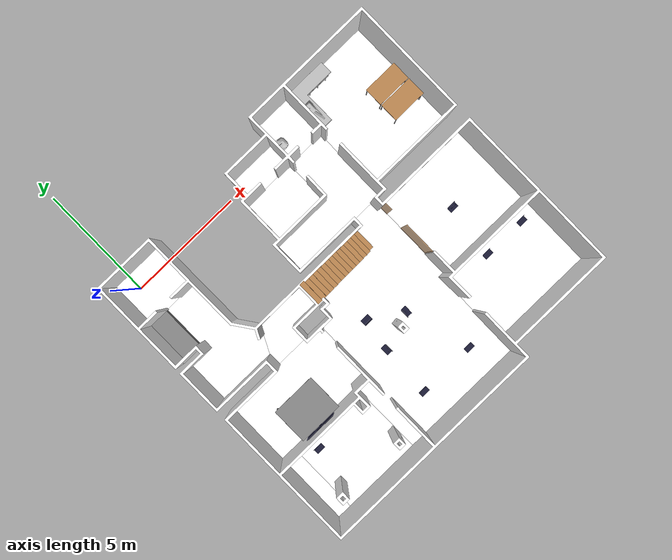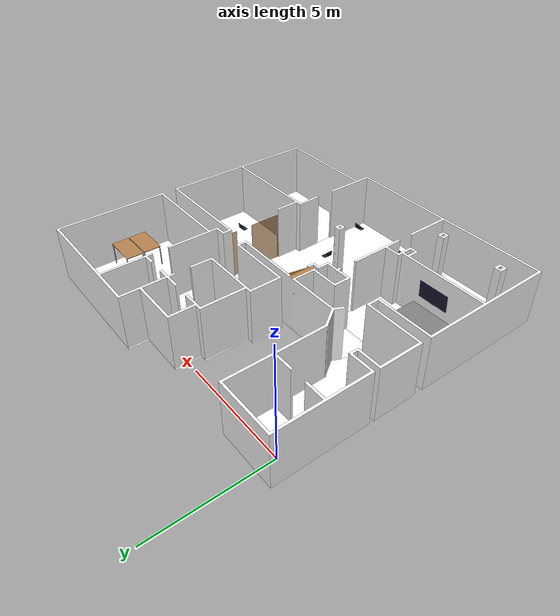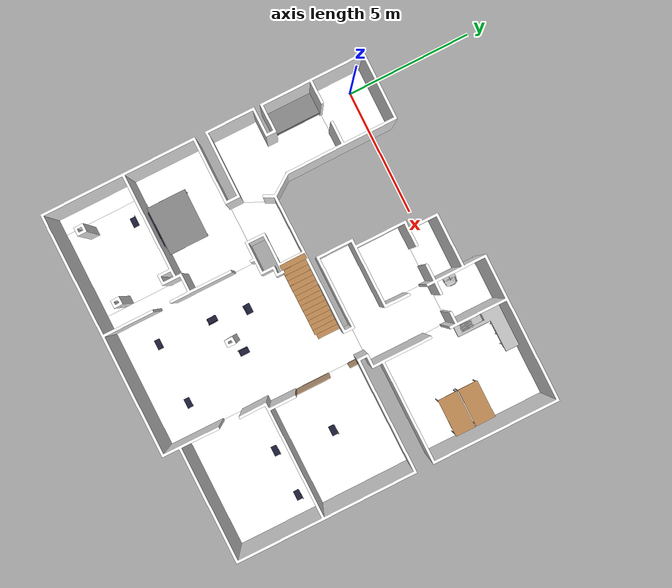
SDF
<sdf version="1.6">
 <world name="husarion_office">
  <physics name="1ms" type="ignored">
   <max_step_size>0.001</max_step_size>
   <real_time_factor>1.0</real_time_factor>
  </physics>
  <plugin filename="ignition-gazebo-contact-system" name="gz::sim::systems::Contact"/>
  <plugin filename="ignition-gazebo-physics-system" name="gz::sim::systems::Physics"/>
  <plugin filename="ignition-gazebo-scene-broadcaster-system" name="gz::sim::systems::SceneBroadcaster"/>
  <plugin filename="ignition-gazebo-sensors-system" name="gz::sim::systems::Sensors">
   <render_engine>ogre2</render_engine>
  </plugin>
  <plugin filename="ignition-gazebo-user-commands-system" name="gz::sim::systems::UserCommands"/>
  <plugin filename="gz-sim-apply-link-wrench-system" name="gz::sim::systems::ApplyLinkWrench"/>
  <spherical_coordinates>
   <surface_model>EARTH_WGS84</surface_model>
   <world_frame_orientation>ENU</world_frame_orientation>
   <latitude_deg>50.088280</latitude_deg>
   <longitude_deg>19.938931</longitude_deg>
   <elevation>0</elevation>
   <heading_deg>0</heading_deg>
  </spherical_coordinates>
  <scene>
   <ambient>0.8 0.8 0.8 1</ambient>
   <background>0 0 0 1</background>
   <grid>0</grid>
   <shadows>1</shadows>
  </scene>
  <light name="sun" type="directional">
   <pose>0 0 10 0 -0 0</pose>
   <diffuse>0.8 0.8 0.8 1</diffuse>
   <specular>0.2 0.2 0.2 1</specular>
   <attenuation>
    <range>1000</range>
    <constant>0.9</constant>
    <linear>0.01</linear>
    <quadratic>0.001</quadratic>
   </attenuation>
   <direction>-0.5 0.1 -0.9</direction>
   <spot><inner_angle>0</inner_angle><outer_angle>0</outer_angle><falloff>0</falloff></spot>
  </light>
  <model name="OpenRobotics/ConferenceTable">
   <static>1</static>
   <link name="link">
    <inertial><mass>1</mass></inertial>
    <collision name="collision">
     <geometry>
      <mesh><uri>model://ConferenceTable/meshes/conference_table.stl</uri><scale>0.016 0.013 0.01</scale></mesh>
     </geometry>
    </collision>
    <visual name="visual">
     <material>
      <ambient>0.4 0.4 0.4 1</ambient>
      <diffuse>0.5 0.5 0.5 1</diffuse>
      <specular>0 0 0 0</specular>
      <emissive>0 0 0 1</emissive>
     </material>
     <geometry>
      <mesh><uri>model://ConferenceTable/meshes/conference_table.stl</uri><scale>0.016 0.013 0.01</scale></mesh>
     </geometry>
    </visual>
   </link>
   <pose>1.46352 -7.98089 0.311675 0 -0 0</pose>
  </model>
  <model name="OpenRobotics/Tv">
   <static>1</static>
   <link name="link">
    <inertial><mass>1</mass></inertial>
    <collision name="collision">
     <geometry><mesh><uri>model://Tv/meshes/tv.stl</uri><scale>0.001 0.001 0.001</scale></mesh></geometry>
    </collision>
    <visual name="visual">
     <material>
      <ambient>0.1 0.1 0.1 1</ambient>
      <diffuse>0.1 0.1 0.2 1</diffuse>
      <specular>0 0 0 0</specular>
      <emissive>0 0 0 1</emissive>
     </material>
     <geometry><mesh><uri>model://Tv/meshes/tv.stl</uri><scale>0.001 0.001 0.001</scale></mesh></geometry>
    </visual>
   </link>
   <pose>2.18887 -8.76455 1.10683 1.6394 -0 -3.13796</pose>
  </model>
  <model name="OpenRobotics/Kitchen">
   <static>1</static>
   <link name="link">
    <inertial><mass>1</mass></inertial>
    <collision name="collision">
     <geometry>
      <mesh><uri>model://Kitchen/meshes/kitchen.stl</uri><scale>0.0005 0.0005 0.0005</scale></mesh>
     </geometry>
    </collision>
    <visual name="visual">
     <geometry>
      <mesh><uri>model://Kitchen/meshes/kitchen.stl</uri><scale>0.0005 0.0005 0.0005</scale></mesh>
     </geometry>
    </visual>
   </link>
   <pose>9.48279 1.33283 -0.000525 1.57 -0 0</pose>
  </model>
  <model name="OpenRobotics/Laptop1">
   <static>1</static>
   <link name="link">
    <inertial><mass>1</mass></inertial>
    <collision name="collision">
     <geometry><mesh><uri>model://Laptop/meshes/laptop.stl</uri><scale>0.001 0.001 0.001</scale></mesh></geometry>
    </collision>
    <visual name="visual">
     <material>
      <ambient>0.1 0.1 0.1 1</ambient>
      <diffuse>0.1 0.1 0.2 1</diffuse>
      <specular>0 0 0 0</specular>
      <emissive>0 0 0 1</emissive>
     </material>
     <geometry><mesh><uri>model://Laptop/meshes/laptop.stl</uri><scale>0.001 0.001 0.001</scale></mesh></geometry>
    </visual>
   </link>
   <pose>5.1926 -8.64964 0.799605 1.71192 -0 1.57996</pose>
  </model>
  <model name="OpenRobotics/Laptop2">
   <static>1</static>
   <link name="link">
    <inertial><mass>1</mass></inertial>
    <collision name="collision">
     <geometry><mesh><uri>model://Laptop/meshes/laptop.stl</uri><scale>0.001 0.001 0.001</scale></mesh></geometry>
    </collision>
    <visual name="visual">
     <material>
      <ambient>0.1 0.1 0.1 1</ambient>
      <diffuse>0.1 0.1 0.2 1</diffuse>
      <specular>0 0 0 0</specular>
      <emissive>0 0 0 1</emissive>
     </material>
     <geometry><mesh><uri>model://Laptop/meshes/laptop.stl</uri><scale>0.001 0.001 0.001</scale></mesh></geometry>
    </visual>
   </link>
   <pose>7.01666 -7.742 0.799605 1.71212 -0 -1.57327</pose>
  </model>
  <model name="OpenRobotics/Laptop3">
   <static>1</static>
   <link name="link">
    <inertial><mass>1</mass></inertial>
    <collision name="collision">
     <geometry><mesh><uri>model://Laptop/meshes/laptop.stl</uri><scale>0.001 0.001 0.001</scale></mesh></geometry>
    </collision>
    <visual name="visual">
     <material>
      <ambient>0.1 0.1 0.1 1</ambient>
      <diffuse>0.1 0.1 0.2 1</diffuse>
      <specular>0 0 0 0</specular>
      <emissive>0 0 0 1</emissive>
     </material>
     <geometry><mesh><uri>model://Laptop/meshes/laptop.stl</uri><scale>0.001 0.001 0.001</scale></mesh></geometry>
    </visual>
   </link>
   <pose>5.35914 -6.95616 0.799605 1.72669 0 0.013855</pose>
  </model>
  <model name="OpenRobotics/Laptop4">
   <static>1</static>
   <link name="link">
    <inertial><mass>1</mass></inertial>
    <collision name="collision">
     <geometry><mesh><uri>model://Laptop/meshes/laptop.stl</uri><scale>0.001 0.001 0.001</scale></mesh></geometry>
    </collision>
    <visual name="visual">
     <material>
      <ambient>0.1 0.1 0.1 1</ambient>
      <diffuse>0.1 0.1 0.2 1</diffuse>
      <specular>0 0 0 0</specular>
      <emissive>0 0 0 1</emissive>
     </material>
     <geometry><mesh><uri>model://Laptop/meshes/laptop.stl</uri><scale>0.001 0.001 0.001</scale></mesh></geometry>
    </visual>
   </link>
   <pose>5.42072 -10.7458 0.799605 1.71397 -0 -3.13007</pose>
  </model>
  <model name="OpenRobotics/Laptop5">
   <static>1</static>
   <link name="link">
    <inertial><mass>1</mass></inertial>
    <collision name="collision">
     <geometry><mesh><uri>model://Laptop/meshes/laptop.stl</uri><scale>0.001 0.001 0.001</scale></mesh></geometry>
    </collision>
    <visual name="visual">
     <material>
      <ambient>0.1 0.1 0.1 1</ambient>
      <diffuse>0.1 0.1 0.2 1</diffuse>
      <specular>0 0 0 0</specular>
      <emissive>0 0 0 1</emissive>
     </material>
     <geometry><mesh><uri>model://Laptop/meshes/laptop.stl</uri><scale>0.001 0.001 0.001</scale></mesh></geometry>
    </visual>
   </link>
   <pose>7.85953 -10.7458 0.799605 1.71397 -0 -3.13007</pose>
  </model>
  <model name="OpenRobotics/Laptop6">
   <static>1</static>
   <link name="link">
    <inertial><mass>1</mass></inertial>
    <collision name="collision">
     <geometry><mesh><uri>model://Laptop/meshes/laptop.stl</uri><scale>0.001 0.001 0.001</scale></mesh></geometry>
    </collision>
    <visual name="visual">
     <material>
      <ambient>0.1 0.1 0.1 1</ambient>
      <diffuse>0.1 0.1 0.2 1</diffuse>
      <specular>0 0 0 0</specular>
      <emissive>0 0 0 1</emissive>
     </material>
     <geometry><mesh><uri>model://Laptop/meshes/laptop.stl</uri><scale>0.001 0.001 0.001</scale></mesh></geometry>
    </visual>
   </link>
   <pose>11.1966 -6.40821 0.799605 1.71045 -0 -3.12835</pose>
  </model>
  <model name="OpenRobotics/Laptop7">
   <static>1</static>
   <link name="link">
    <inertial><mass>1</mass></inertial>
    <collision name="collision">
     <geometry><mesh><uri>model://Laptop/meshes/laptop.stl</uri><scale>0.001 0.001 0.001</scale></mesh></geometry>
    </collision>
    <visual name="visual">
     <material>
      <ambient>0.1 0.1 0.1 1</ambient>
      <diffuse>0.1 0.1 0.2 1</diffuse>
      <specular>0 0 0 0</specular>
      <emissive>0 0 0 1</emissive>
     </material>
     <geometry><mesh><uri>model://Laptop/meshes/laptop.stl</uri><scale>0.001 0.001 0.001</scale></mesh></geometry>
    </visual>
   </link>
   <pose>10.9069 -8.65845 0.799605 1.71045 -0 -3.12835</pose>
  </model>
  <model name="OpenRobotics/Laptop8">
   <static>1</static>
   <link name="link">
    <inertial><mass>1</mass></inertial>
    <collision name="collision">
     <geometry><mesh><uri>model://Laptop/meshes/laptop.stl</uri><scale>0.001 0.001 0.001</scale></mesh></geometry>
    </collision>
    <visual name="visual">
     <material>
      <ambient>0.1 0.1 0.1 1</ambient>
      <diffuse>0.1 0.1 0.2 1</diffuse>
      <specular>0 0 0 0</specular>
      <emissive>0 0 0 1</emissive>
     </material>
     <geometry><mesh><uri>model://Laptop/meshes/laptop.stl</uri><scale>0.001 0.001 0.001</scale></mesh></geometry>
    </visual>
   </link>
   <pose>12.7505 -8.65845 0.799605 1.71045 -0 -3.12835</pose>
  </model>
  <model name="OpenRobotics/Laptop9">
   <static>1</static>
   <link name="link">
    <inertial><mass>1</mass></inertial>
    <collision name="collision">
     <geometry><mesh><uri>model://Laptop/meshes/laptop.stl</uri><scale>0.001 0.001 0.001</scale></mesh></geometry>
    </collision>
    <visual name="visual">
     <material>
      <ambient>0.1 0.1 0.1 1</ambient>
      <diffuse>0.1 0.1 0.2 1</diffuse>
      <specular>0 0 0 0</specular>
      <emissive>0 0 0 1</emissive>
     </material>
     <geometry><mesh><uri>model://Laptop/meshes/laptop.stl</uri><scale>0.001 0.001 0.001</scale></mesh></geometry>
    </visual>
   </link>
   <pose>0.956932 -9.50521 0.799605 1.71045 -0 -3.13007</pose>
  </model>
  <model name="OpenRobotics/BathroomSink">
   <static>1</static>
   <link name="body">
    <visual name="visual">
     <geometry><mesh><uri>model://bathroomsink/meshes/BathroomSink.obj</uri></mesh></geometry>
    </visual>
    <collision name="collision">
     <geometry><mesh><uri>model://bathroomsink/meshes/BathroomSink_Col.obj</uri></mesh></geometry>
    </collision>
   </link>
   <pose>7.77775 0.199505 0 0 -0 1.5708</pose>
  </model>
  <model name="OpenRobotics/Table">
   <static>1</static>
   <link name="link">
    <collision name="surface">
     <pose>0 0 1 0 -0 0</pose>
     <geometry><box><size>1.5 0.8 0.03</size></box></geometry>
     <surface><friction><ode><mu>0.6</mu><mu2>0.6</mu2></ode></friction></surface>
    </collision>
    <visual name="visual1">
     <pose>0 0 1 0 -0 0</pose>
     <geometry><box><size>1.5 0.8 0.03</size></box></geometry>
     <material>
      <diffuse>1 1 1 1</diffuse>
      <script><uri>file://media/materials/scripts/gazebo.material</uri><name>Gazebo/Wood</name></script>
      <pbr><metal><albedo_map>model://table/Table_Diffuse.jpg</albedo_map></metal></pbr>
     </material>
    </visual>
    <collision name="front_left_leg">
     <pose>0.68 0.38 0.5 0 -0 0</pose>
     <geometry><cylinder><radius>0.02</radius><length>1</length></cylinder></geometry>
    </collision>
    <visual name="front_left_leg">
     <pose>0.68 0.38 0.5 0 -0 0</pose>
     <geometry><cylinder><radius>0.02</radius><length>1</length></cylinder></geometry>
     <material>
      <diffuse>0.5 0.5 0.5 1</diffuse>
      <script><uri>file://media/materials/scripts/gazebo.material</uri><name>Gazebo/Grey</name></script>
     </material>
    </visual>
    <collision name="front_right_leg">
     <pose>0.68 -0.38 0.5 0 -0 0</pose>
     <geometry><cylinder><radius>0.02</radius><length>1</length></cylinder></geometry>
    </collision>
    <visual name="front_right_leg">
     <pose>0.68 -0.38 0.5 0 -0 0</pose>
     <geometry><cylinder><radius>0.02</radius><length>1</length></cylinder></geometry>
     <material>
      <diffuse>0.5 0.5 0.5 1</diffuse>
      <script><uri>file://media/materials/scripts/gazebo.material</uri><name>Gazebo/Grey</name></script>
     </material>
    </visual>
    <collision name="back_right_leg">
     <pose>-0.68 -0.38 0.5 0 -0 0</pose>
     <geometry><cylinder><radius>0.02</radius><length>1</length></cylinder></geometry>
    </collision>
    <visual name="back_right_leg">
     <pose>-0.68 -0.38 0.5 0 -0 0</pose>
     <geometry><cylinder><radius>0.02</radius><length>1</length></cylinder></geometry>
     <material>
      <diffuse>0.5 0.5 0.5 1</diffuse>
      <script><uri>file://media/materials/scripts/gazebo.material</uri><name>Gazebo/Grey</name></script>
     </material>
    </visual>
    <collision name="back_left_leg">
     <pose>-0.68 0.38 0.5 0 -0 0</pose>
     <geometry><cylinder><radius>0.02</radius><length>1</length></cylinder></geometry>
    </collision>
    <visual name="back_left_leg">
     <pose>-0.68 0.38 0.5 0 -0 0</pose>
     <geometry><cylinder><radius>0.02</radius><length>1</length></cylinder></geometry>
     <material>
      <diffuse>0.5 0.5 0.5 1</diffuse>
      <script><uri>file://media/materials/scripts/gazebo.material</uri><name>Gazebo/Grey</name></script>
     </material>
    </visual>
   </link>
   <pose>12.483 -1.10033 0 0 0 -3.14</pose>
  </model>
  <model name="OpenRobotics/Table_2">
   <static>1</static>
   <link name="link">
    <collision name="surface">
     <pose>0 0 1 0 -0 0</pose>
     <geometry><box><size>1.5 0.8 0.03</size></box></geometry>
     <surface><friction><ode><mu>0.6</mu><mu2>0.6</mu2></ode></friction></surface>
    </collision>
    <visual name="visual1">
     <pose>0 0 1 0 -0 0</pose>
     <geometry><box><size>1.5 0.8 0.03</size></box></geometry>
     <material>
      <diffuse>1 1 1 1</diffuse>
      <script><uri>file://media/materials/scripts/gazebo.material</uri><name>Gazebo/Wood</name></script>
      <pbr><metal><albedo_map>model://table/Table_Diffuse.jpg</albedo_map></metal></pbr>
     </material>
    </visual>
    <collision name="front_left_leg">
     <pose>0.68 0.38 0.5 0 -0 0</pose>
     <geometry><cylinder><radius>0.02</radius><length>1</length></cylinder></geometry>
    </collision>
    <visual name="front_left_leg">
     <pose>0.68 0.38 0.5 0 -0 0</pose>
     <geometry><cylinder><radius>0.02</radius><length>1</length></cylinder></geometry>
     <material>
      <diffuse>0.5 0.5 0.5 1</diffuse>
      <script><uri>file://media/materials/scripts/gazebo.material</uri><name>Gazebo/Grey</name></script>
     </material>
    </visual>
    <collision name="front_right_leg">
     <pose>0.68 -0.38 0.5 0 -0 0</pose>
     <geometry><cylinder><radius>0.02</radius><length>1</length></cylinder></geometry>
    </collision>
    <visual name="front_right_leg">
     <pose>0.68 -0.38 0.5 0 -0 0</pose>
     <geometry><cylinder><radius>0.02</radius><length>1</length></cylinder></geometry>
     <material>
      <diffuse>0.5 0.5 0.5 1</diffuse>
      <script><uri>file://media/materials/scripts/gazebo.material</uri><name>Gazebo/Grey</name></script>
     </material>
    </visual>
    <collision name="back_right_leg">
     <pose>-0.68 -0.38 0.5 0 -0 0</pose>
     <geometry><cylinder><radius>0.02</radius><length>1</length></cylinder></geometry>
    </collision>
    <visual name="back_right_leg">
     <pose>-0.68 -0.38 0.5 0 -0 0</pose>
     <geometry><cylinder><radius>0.02</radius><length>1</length></cylinder></geometry>
     <material>
      <diffuse>0.5 0.5 0.5 1</diffuse>
      <script><uri>file://media/materials/scripts/gazebo.material</uri><name>Gazebo/Grey</name></script>
     </material>
    </visual>
    <collision name="back_left_leg">
     <pose>-0.68 0.38 0.5 0 -0 0</pose>
     <geometry><cylinder><radius>0.02</radius><length>1</length></cylinder></geometry>
    </collision>
    <visual name="back_left_leg">
     <pose>-0.68 0.38 0.5 0 -0 0</pose>
     <geometry><cylinder><radius>0.02</radius><length>1</length></cylinder></geometry>
     <material>
      <diffuse>0.5 0.5 0.5 1</diffuse>
      <script><uri>file://media/materials/scripts/gazebo.material</uri><name>Gazebo/Grey</name></script>
     </material>
    </visual>
   </link>
   <pose>12.4903 -1.93794 0 0 0 -3.139</pose>
  </model>
  <model name="Stairs">
   <pose>3.36692 -2.10944 0 0 -0 0</pose>
   <link name="Stairs_1">
    <visual name="Stairs_1_Visual_0">
     <pose>4.29715 -2.69448 0.083333 0 -0 -1.5708</pose>
     <geometry><box><size>0.9 0.205349 0.166667</size></box></geometry>
     <material>
      <script><uri>file://media/materials/scripts/gazebo.material</uri><name>Gazebo/Wood</name></script>
      <ambient>1 1 1 1</ambient>
     </material>
     <meta><layer>0</layer></meta>
    </visual>
    <collision name="Stairs_1_Collision_0">
     <geometry><box><size>1 0.205349 0.166667</size></box></geometry>
     <pose>4.29715 -2.69448 0.083333 0 -0 -1.5708</pose>
    </collision>
    <visual name="Stairs_1_Visual_1">
     <pose>4.0918 -2.69448 0.25 0 -0 -1.5708</pose>
     <geometry><box><size>1 0.205349 0.166667</size></box></geometry>
     <material>
      <script><uri>file://media/materials/scripts/gazebo.material</uri><name>Gazebo/Wood</name></script>
      <ambient>1 1 1 1</ambient>
     </material>
     <meta><layer>0</layer></meta>
    </visual>
    <collision name="Stairs_1_Collision_1">
     <geometry><box><size>1 0.205349 0.166667</size></box></geometry>
     <pose>4.0918 -2.69448 0.25 0 -0 -1.5708</pose>
    </collision>
    <visual name="Stairs_1_Visual_2">
     <pose>3.88645 -2.69448 0.416667 0 -0 -1.5708</pose>
     <geometry><box><size>1 0.205349 0.166667</size></box></geometry>
     <material>
      <script><uri>file://media/materials/scripts/gazebo.material</uri><name>Gazebo/Wood</name></script>
      <ambient>1 1 1 1</ambient>
     </material>
     <meta><layer>0</layer></meta>
    </visual>
    <collision name="Stairs_1_Collision_2">
     <geometry><box><size>1 0.205349 0.166667</size></box></geometry>
     <pose>3.88645 -2.69448 0.416667 0 -0 -1.5708</pose>
    </collision>
    <visual name="Stairs_1_Visual_3">
     <pose>3.6811 -2.69448 0.583333 0 -0 -1.5708</pose>
     <geometry><box><size>1 0.205349 0.166667</size></box></geometry>
     <material>
      <script><uri>file://media/materials/scripts/gazebo.material</uri><name>Gazebo/Wood</name></script>
      <ambient>1 1 1 1</ambient>
     </material>
     <meta><layer>0</layer></meta>
    </visual>
    <collision name="Stairs_1_Collision_3">
     <geometry><box><size>1 0.205349 0.166667</size></box></geometry>
     <pose>3.6811 -2.69448 0.583333 0 -0 -1.5708</pose>
    </collision>
    <visual name="Stairs_1_Visual_4">
     <pose>3.47575 -2.69448 0.75 0 -0 -1.5708</pose>
     <geometry><box><size>1 0.205349 0.166667</size></box></geometry>
     <material>
      <script><uri>file://media/materials/scripts/gazebo.material</uri><name>Gazebo/Wood</name></script>
      <ambient>1 1 1 1</ambient>
     </material>
     <meta><layer>0</layer></meta>
    </visual>
    <collision name="Stairs_1_Collision_4">
     <geometry><box><size>1 0.205349 0.166667</size></box></geometry>
     <pose>3.47575 -2.69448 0.75 0 -0 -1.5708</pose>
    </collision>
    <visual name="Stairs_1_Visual_5">
     <pose>3.2704 -2.69448 0.916667 0 -0 -1.5708</pose>
     <geometry><box><size>1 0.205349 0.166667</size></box></geometry>
     <material>
      <script><uri>file://media/materials/scripts/gazebo.material</uri><name>Gazebo/Wood</name></script>
      <ambient>1 1 1 1</ambient>
     </material>
     <meta><layer>0</layer></meta>
    </visual>
    <collision name="Stairs_1_Collision_5">
     <geometry><box><size>1 0.205349 0.166667</size></box></geometry>
     <pose>3.2704 -2.69448 0.916667 0 -0 -1.5708</pose>
    </collision>
    <visual name="Stairs_1_Visual_6">
     <pose>3.06505 -2.69448 1.08333 0 -0 -1.5708</pose>
     <geometry><box><size>1 0.205349 0.166667</size></box></geometry>
     <material>
      <script><uri>file://media/materials/scripts/gazebo.material</uri><name>Gazebo/Wood</name></script>
      <ambient>1 1 1 1</ambient>
     </material>
     <meta><layer>0</layer></meta>
    </visual>
    <collision name="Stairs_1_Collision_6">
     <geometry><box><size>1 0.205349 0.166667</size></box></geometry>
     <pose>3.06505 -2.69448 1.08333 0 -0 -1.5708</pose>
    </collision>
    <visual name="Stairs_1_Visual_7">
     <pose>2.8597 -2.69448 1.25 0 -0 -1.5708</pose>
     <geometry><box><size>1 0.205349 0.166667</size></box></geometry>
     <material>
      <script><uri>file://media/materials/scripts/gazebo.material</uri><name>Gazebo/Wood</name></script>
      <ambient>1 1 1 1</ambient>
     </material>
     <meta><layer>0</layer></meta>
    </visual>
    <collision name="Stairs_1_Collision_7">
     <geometry><box><size>1 0.205349 0.166667</size></box></geometry>
     <pose>2.8597 -2.69448 1.25 0 -0 -1.5708</pose>
    </collision>
    <visual name="Stairs_1_Visual_8">
     <pose>2.65435 -2.69448 1.41667 0 -0 -1.5708</pose>
     <geometry><box><size>1 0.205349 0.166667</size></box></geometry>
     <material>
      <script><uri>file://media/materials/scripts/gazebo.material</uri><name>Gazebo/Wood</name></script>
      <ambient>1 1 1 1</ambient>
     </material>
     <meta><layer>0</layer></meta>
    </visual>
    <collision name="Stairs_1_Collision_8">
     <geometry><box><size>1 0.205349 0.166667</size></box></geometry>
     <pose>2.65435 -2.69448 1.41667 0 -0 -1.5708</pose>
    </collision>
    <visual name="Stairs_1_Visual_9">
     <pose>2.449 -2.69448 1.58333 0 -0 -1.5708</pose>
     <geometry><box><size>1 0.205349 0.166667</size></box></geometry>
     <material>
      <script><uri>file://media/materials/scripts/gazebo.material</uri><name>Gazebo/Wood</name></script>
      <ambient>1 1 1 1</ambient>
     </material>
     <meta><layer>0</layer></meta>
    </visual>
    <collision name="Stairs_1_Collision_9">
     <geometry><box><size>1 0.205349 0.166667</size></box></geometry>
     <pose>2.449 -2.69448 1.58333 0 -0 -1.5708</pose>
    </collision>
    <visual name="Stairs_1_Visual_10">
     <pose>2.24365 -2.69448 1.75 0 -0 -1.5708</pose>
     <geometry><box><size>1 0.205349 0.166667</size></box></geometry>
     <material>
      <script><uri>file://media/materials/scripts/gazebo.material</uri><name>Gazebo/Wood</name></script>
      <ambient>1 1 1 1</ambient>
     </material>
     <meta><layer>0</layer></meta>
    </visual>
    <collision name="Stairs_1_Collision_10">
     <geometry><box><size>1 0.205349 0.166667</size></box></geometry>
     <pose>2.24365 -2.69448 1.75 0 -0 -1.5708</pose>
    </collision>
    <visual name="Stairs_1_Visual_11">
     <pose>2.0383 -2.69448 1.91667 0 -0 -1.5708</pose>
     <geometry><box><size>1 0.205349 0.166667</size></box></geometry>
     <material>
      <script><uri>file://media/materials/scripts/gazebo.material</uri><name>Gazebo/Wood</name></script>
      <ambient>1 1 1 1</ambient>
     </material>
     <meta><layer>0</layer></meta>
    </visual>
    <collision name="Stairs_1_Collision_11">
     <geometry><box><size>1 0.205349 0.166667</size></box></geometry>
     <pose>2.0383 -2.69448 1.91667 0 -0 -1.5708</pose>
    </collision>
    <visual name="Stairs_1_Visual_12">
     <pose>1.83295 -2.69448 2.08333 0 -0 -1.5708</pose>
     <geometry><box><size>1 0.205349 0.166667</size></box></geometry>
     <material>
      <script><uri>file://media/materials/scripts/gazebo.material</uri><name>Gazebo/Wood</name></script>
      <ambient>1 1 1 1</ambient>
     </material>
     <meta><layer>0</layer></meta>
    </visual>
    <collision name="Stairs_1_Collision_12">
     <geometry><box><size>1 0.205349 0.166667</size></box></geometry>
     <pose>1.83295 -2.69448 2.08333 0 -0 -1.5708</pose>
    </collision>
    <visual name="Stairs_1_Visual_13">
     <pose>1.62761 -2.69448 2.25 0 -0 -1.5708</pose>
     <geometry><box><size>1 0.205349 0.166667</size></box></geometry>
     <material>
      <script><uri>file://media/materials/scripts/gazebo.material</uri><name>Gazebo/Wood</name></script>
      <ambient>1 1 1 1</ambient>
     </material>
     <meta><layer>0</layer></meta>
    </visual>
    <collision name="Stairs_1_Collision_13">
     <geometry><box><size>1 0.205349 0.166667</size></box></geometry>
     <pose>1.62761 -2.69448 2.25 0 -0 -1.5708</pose>
    </collision>
    <visual name="Stairs_1_Visual_14">
     <pose>1.42226 -2.69448 2.41667 0 -0 -1.5708</pose>
     <geometry><box><size>1 0.205349 0.166667</size></box></geometry>
     <material>
      <script><uri>file://media/materials/scripts/gazebo.material</uri><name>Gazebo/Wood</name></script>
      <ambient>1 1 1 1</ambient>
     </material>
     <meta><layer>0</layer></meta>
    </visual>
    <collision name="Stairs_1_Collision_14">
     <geometry><box><size>1 0.205349 0.166667</size></box></geometry>
     <pose>1.42226 -2.69448 2.41667 0 -0 -1.5708</pose>
    </collision>
   </link>
   <static>1</static>
  </model>
  <model name="Glass_wall_1">
   <pose>9.09134 -6.20141 0 -0 -0 -1.56984</pose>
   <link name="right">
    <pose>0 0 1.11 0 -0 0</pose>
    <visual name="right_visual">
     <geometry><box><size>1.43627 0.03 2.2</size></box></geometry>
     <material><ambient>0.5 0.25 0 0.6</ambient><diffuse>0.5 0.25 0 0.6</diffuse></material>
    </visual>
    <collision name="right_collision">
     <geometry><box><size>1.43627 0.03 2.2</size></box></geometry>
     <surface><contact><collide_bitmask>2</collide_bitmask></contact></surface>
    </collision>
    <inertial>
     <mass>50</mass>
     <inertia><ixx>20.1704</ixx><iyy>28.762</iyy><izz>8.59904</izz><ixy>0</ixy><ixz>0</ixz><iyz>0</iyz></inertia>
    </inertial>
   </link>
   <joint name="right_joint" type="revolute">
    <parent>world</parent>
    <child>right</child>
    <axis>
     <xyz>0 0 -1</xyz>
     <limit><lower>0</lower><upper>0</upper></limit>
     <dynamics><spring_reference>0</spring_reference><spring_stiffness>0</spring_stiffness></dynamics>
    </axis>
    <pose>0.723135 0 0 0 -0 0</pose>
   </joint>
  </model>
  <model name="Glass_wall_2">
   <pose>9.08943 -4.5093 0 0 -0 1.58293</pose>
   <link name="right">
    <pose>0 0 1.11 0 -0 0</pose>
    <visual name="right_visual">
     <geometry><box><size>0.389643 0.03 2.2</size></box></geometry>
     <material><ambient>0.5 0.25 0 0.6</ambient><diffuse>0.5 0.25 0 0.6</diffuse></material>
    </visual>
    <collision name="right_collision">
     <geometry><box><size>0.389643 0.03 2.2</size></box></geometry>
     <surface><contact><collide_bitmask>2</collide_bitmask></contact></surface>
    </collision>
    <inertial>
     <mass>50</mass>
     <inertia><ixx>20.1704</ixx><iyy>20.7993</iyy><izz>0.636341</izz><ixy>0</ixy><ixz>0</ixz><iyz>0</iyz></inertia>
    </inertial>
   </link>
   <joint name="right_joint" type="revolute">
    <parent>world</parent>
    <child>right</child>
    <axis>
     <xyz>0 0 -1</xyz>
     <limit><lower>0</lower><upper>0</upper></limit>
     <dynamics><spring_reference>0</spring_reference><spring_stiffness>0</spring_stiffness></dynamics>
    </axis>
    <pose>0.199822 0 0 0 -0 0</pose>
   </joint>
  </model>
  <model name="Surfaces">
   <static>1</static>
   <link name="floor_1">
    <visual name="visual">
     <geometry><mesh><uri>model://Surfaces/meshes/floor_1.obj</uri></mesh></geometry>
     <material>
      <diffuse>1 1 1 1</diffuse>
      <specular>0.1 0.1 0.1 1</specular>
      <pbr><metal><metalness>0.0</metalness><albedo_map>model://Surfaces/meshes/wood1.png</albedo_map></metal></pbr>
      <script><uri>model://Surfaces/meshes/</uri><name>floor_1_Diffuse</name></script>
     </material>
    </visual>
    <collision name="collision">
     <geometry><mesh><uri>model://Surfaces/meshes/floor_1.obj</uri></mesh></geometry>
     <surface><contact><collide_bitmask>1</collide_bitmask></contact></surface>
    </collision>
   </link>
   <link name="floor_2">
    <visual name="visual">
     <geometry><mesh><uri>model://Surfaces/meshes/floor_2.obj</uri></mesh></geometry>
     <material>
      <diffuse>1 1 1 1</diffuse>
      <specular>0.1 0.1 0.1 1</specular>
      <pbr>
       <metal><metalness>0.0</metalness><albedo_map>model://Surfaces/meshes/white_carpet.png</albedo_map></metal>
      </pbr>
      <script><uri>model://Surfaces/meshes/</uri><name>floor_2_Diffuse</name></script>
     </material>
    </visual>
    <collision name="collision">
     <geometry><mesh><uri>model://Surfaces/meshes/floor_2.obj</uri></mesh></geometry>
     <surface><contact><collide_bitmask>1</collide_bitmask></contact></surface>
    </collision>
   </link>
   <link name="floor_3">
    <visual name="visual">
     <geometry><mesh><uri>model://Surfaces/meshes/floor_3.obj</uri></mesh></geometry>
     <material>
      <diffuse>1 1 1 1</diffuse>
      <specular>0.1 0.1 0.1 1</specular>
      <pbr>
       <metal><metalness>0.0</metalness><albedo_map>model://Surfaces/meshes/white_carpet.png</albedo_map></metal>
      </pbr>
      <script><uri>model://Surfaces/meshes/</uri><name>floor_3_Diffuse</name></script>
     </material>
    </visual>
    <collision name="collision">
     <geometry><mesh><uri>model://Surfaces/meshes/floor_3.obj</uri></mesh></geometry>
     <surface><contact><collide_bitmask>1</collide_bitmask></contact></surface>
    </collision>
   </link>
   <link name="floor_4">
    <visual name="visual">
     <geometry><mesh><uri>model://Surfaces/meshes/floor_4.obj</uri></mesh></geometry>
     <material>
      <diffuse>1 1 1 1</diffuse>
      <specular>0.1 0.1 0.1 1</specular>
      <pbr>
       <metal><metalness>0.0</metalness><albedo_map>model://Surfaces/meshes/black_concrete.png</albedo_map></metal>
      </pbr>
      <script><uri>model://Surfaces/meshes/</uri><name>floor_4_Diffuse</name></script>
     </material>
    </visual>
    <collision name="collision">
     <geometry><mesh><uri>model://Surfaces/meshes/floor_4.obj</uri></mesh></geometry>
     <surface><contact><collide_bitmask>1</collide_bitmask></contact></surface>
    </collision>
   </link>
   <link name="floor_5">
    <visual name="visual">
     <geometry><mesh><uri>model://Surfaces/meshes/floor_5.obj</uri></mesh></geometry>
     <material>
      <diffuse>1 1 1 1</diffuse>
      <specular>0.1 0.1 0.1 1</specular>
      <pbr>
       <metal><metalness>0.0</metalness><albedo_map>model://Surfaces/meshes/white_tiles.png</albedo_map></metal>
      </pbr>
      <script><uri>model://Surfaces/meshes/</uri><name>floor_5_Diffuse</name></script>
     </material>
    </visual>
    <collision name="collision">
     <geometry><mesh><uri>model://Surfaces/meshes/floor_5.obj</uri></mesh></geometry>
     <surface><contact><collide_bitmask>1</collide_bitmask></contact></surface>
    </collision>
   </link>
   <link name="floor_6">
    <visual name="visual">
     <geometry><mesh><uri>model://Surfaces/meshes/floor_6.obj</uri></mesh></geometry>
     <material>
      <diffuse>1 1 1 1</diffuse>
      <specular>0.1 0.1 0.1 1</specular>
      <pbr>
       <metal><metalness>0.0</metalness><albedo_map>model://Surfaces/meshes/white_tiles.png</albedo_map></metal>
      </pbr>
      <script><uri>model://Surfaces/meshes/</uri><name>floor_6_Diffuse</name></script>
     </material>
    </visual>
    <collision name="collision">
     <geometry><mesh><uri>model://Surfaces/meshes/floor_6.obj</uri></mesh></geometry>
     <surface><contact><collide_bitmask>1</collide_bitmask></contact></surface>
    </collision>
   </link>
   <link name="floor_7">
    <visual name="visual">
     <geometry><mesh><uri>model://Surfaces/meshes/floor_7.obj</uri></mesh></geometry>
     <material>
      <diffuse>1 1 1 1</diffuse>
      <specular>0.1 0.1 0.1 1</specular>
      <pbr>
       <metal><metalness>0.0</metalness><albedo_map>model://Surfaces/meshes/white_tiles.png</albedo_map></metal>
      </pbr>
      <script><uri>model://Surfaces/meshes/</uri><name>floor_7_Diffuse</name></script>
     </material>
    </visual>
    <collision name="collision">
     <geometry><mesh><uri>model://Surfaces/meshes/floor_7.obj</uri></mesh></geometry>
     <surface><contact><collide_bitmask>1</collide_bitmask></contact></surface>
    </collision>
   </link>
   <link name="floor_8">
    <visual name="visual">
     <geometry><mesh><uri>model://Surfaces/meshes/floor_8.obj</uri></mesh></geometry>
     <material>
      <diffuse>1 1 1 1</diffuse>
      <specular>0.1 0.1 0.1 1</specular>
      <pbr>
       <metal><metalness>0.0</metalness><albedo_map>model://Surfaces/meshes/white_carpet.png</albedo_map></metal>
      </pbr>
      <script><uri>model://Surfaces/meshes/</uri><name>floor_8_Diffuse</name></script>
     </material>
    </visual>
    <collision name="collision">
     <geometry><mesh><uri>model://Surfaces/meshes/floor_8.obj</uri></mesh></geometry>
     <surface><contact><collide_bitmask>1</collide_bitmask></contact></surface>
    </collision>
   </link>
   <link name="floor_9">
    <visual name="visual">
     <geometry><mesh><uri>model://Surfaces/meshes/floor_9.obj</uri></mesh></geometry>
     <material>
      <diffuse>1 1 1 1</diffuse>
      <specular>0.1 0.1 0.1 1</specular>
      <pbr><metal><metalness>0.0</metalness><albedo_map>model://Surfaces/meshes/wood1.png</albedo_map></metal></pbr>
      <script><uri>model://Surfaces/meshes/</uri><name>floor_9_Diffuse</name></script>
     </material>
    </visual>
    <collision name="collision">
     <geometry><mesh><uri>model://Surfaces/meshes/floor_9.obj</uri></mesh></geometry>
     <surface><contact><collide_bitmask>1</collide_bitmask></contact></surface>
    </collision>
   </link>
   <link name="floor_10">
    <visual name="visual">
     <geometry><mesh><uri>model://Surfaces/meshes/floor_10.obj</uri></mesh></geometry>
     <material>
      <diffuse>1 1 1 1</diffuse>
      <specular>0.1 0.1 0.1 1</specular>
      <pbr>
       <metal><metalness>0.0</metalness><albedo_map>model://Surfaces/meshes/white_carpet.png</albedo_map></metal>
      </pbr>
      <script><uri>model://Surfaces/meshes/</uri><name>floor_10_Diffuse</name></script>
     </material>
    </visual>
    <collision name="collision">
     <geometry><mesh><uri>model://Surfaces/meshes/floor_10.obj</uri></mesh></geometry>
     <surface><contact><collide_bitmask>1</collide_bitmask></contact></surface>
    </collision>
   </link>
   <link name="floor_11">
    <visual name="visual">
     <geometry><mesh><uri>model://Surfaces/meshes/floor_11.obj</uri></mesh></geometry>
     <material>
      <diffuse>1 1 1 1</diffuse>
      <specular>0.1 0.1 0.1 1</specular>
      <pbr><metal><metalness>0.0</metalness><albedo_map>model://Surfaces/meshes/wood1.png</albedo_map></metal></pbr>
      <script><uri>model://Surfaces/meshes/</uri><name>floor_11_Diffuse</name></script>
     </material>
    </visual>
    <collision name="collision">
     <geometry><mesh><uri>model://Surfaces/meshes/floor_11.obj</uri></mesh></geometry>
     <surface><contact><collide_bitmask>1</collide_bitmask></contact></surface>
    </collision>
   </link>
   <link name="floor_12">
    <visual name="visual">
     <geometry><mesh><uri>model://Surfaces/meshes/floor_12.obj</uri></mesh></geometry>
     <material>
      <diffuse>1 1 1 1</diffuse>
      <specular>0.1 0.1 0.1 1</specular>
      <pbr>
       <metal><metalness>0.0</metalness><albedo_map>model://Surfaces/meshes/white_carpet.png</albedo_map></metal>
      </pbr>
      <script><uri>model://Surfaces/meshes/</uri><name>floor_12_Diffuse</name></script>
     </material>
    </visual>
    <collision name="collision">
     <geometry><mesh><uri>model://Surfaces/meshes/floor_12.obj</uri></mesh></geometry>
     <surface><contact><collide_bitmask>1</collide_bitmask></contact></surface>
    </collision>
   </link>
   <link name="floor_13">
    <visual name="visual">
     <geometry><mesh><uri>model://Surfaces/meshes/floor_13.obj</uri></mesh></geometry>
     <material>
      <diffuse>1 1 1 1</diffuse>
      <specular>0.1 0.1 0.1 1</specular>
      <pbr>
       <metal><metalness>0.0</metalness><albedo_map>model://Surfaces/meshes/white_tiles.png</albedo_map></metal>
      </pbr>
      <script><uri>model://Surfaces/meshes/</uri><name>floor_13_Diffuse</name></script>
     </material>
    </visual>
    <collision name="collision">
     <geometry><mesh><uri>model://Surfaces/meshes/floor_13.obj</uri></mesh></geometry>
     <surface><contact><collide_bitmask>1</collide_bitmask></contact></surface>
    </collision>
   </link>
   <link name="floor_14">
    <visual name="visual">
     <geometry><mesh><uri>model://Surfaces/meshes/floor_14.obj</uri></mesh></geometry>
     <material>
      <diffuse>1 1 1 1</diffuse>
      <specular>0.1 0.1 0.1 1</specular>
      <pbr>
       <metal><metalness>0.0</metalness><albedo_map>model://Surfaces/meshes/black_concrete.png</albedo_map></metal>
      </pbr>
      <script><uri>model://Surfaces/meshes/</uri><name>floor_14_Diffuse</name></script>
     </material>
    </visual>
    <collision name="collision">
     <geometry><mesh><uri>model://Surfaces/meshes/floor_14.obj</uri></mesh></geometry>
     <surface><contact><collide_bitmask>1</collide_bitmask></contact></surface>
    </collision>
   </link>
   <link name="wall_1">
    <visual name="wall_1">
     <geometry><mesh><uri>model://Surfaces/meshes/wall_1.obj</uri></mesh></geometry>
     <material>
      <diffuse>1 1 1 1</diffuse>
      <specular>0.1 0.1 0.1 1</specular>
      <pbr>
       <metal><metalness>0.0</metalness><albedo_map>model://Surfaces/meshes/white_wall.png</albedo_map></metal>
      </pbr>
      <script><uri>model://Surfaces/meshes/</uri><name>wall_1_Diffuse</name></script>
     </material>
    </visual>
    <collision name="collision">
     <geometry><mesh><uri>model://Surfaces/meshes/wall_1.obj</uri></mesh></geometry>
     <surface><contact><collide_bitmask>1</collide_bitmask></contact></surface>
    </collision>
    <pose>0.219432 -13.1144 0 0 -0 0</pose>
   </link>
   <link name="wall_2">
    <visual name="wall_2">
     <geometry><mesh><uri>model://Surfaces/meshes/wall_2.obj</uri></mesh></geometry>
     <material>
      <diffuse>1 1 1 1</diffuse>
      <specular>0.1 0.1 0.1 1</specular>
      <pbr><metal><metalness>0.0</metalness><albedo_map>model://Surfaces/meshes/wood2.png</albedo_map></metal></pbr>
      <script><uri>model://Surfaces/meshes/</uri><name>wall_2_Diffuse</name></script>
     </material>
    </visual>
    <collision name="collision">
     <geometry><mesh><uri>model://Surfaces/meshes/wall_2.obj</uri></mesh></geometry>
     <surface><contact><collide_bitmask>1</collide_bitmask></contact></surface>
    </collision>
    <pose>1.17225 -12.2477 0 0 -0 0</pose>
   </link>
   <pose>-1 1 0 0 -0 0</pose>
  </model>
  <model name="Shelf_1">
   <static>1</static>
   <pose>-0.273934 -2.28745 0.2 0 0 -1.56696</pose>
   <link name="shelf_link">
    <collision name="body_collision"><geometry><box><size>1.9638 0.8878 0.4</size></box></geometry></collision>
    <visual name="body_visual">
     <material>
      <ambient>0.4 0.4 0.4 1</ambient>
      <diffuse>0.5 0.5 0.5 1</diffuse>
      <specular>0 0 0 0</specular>
      <emissive>0 0 0 1</emissive>
     </material>
     <geometry><box><size>1.9638 0.8878 0.4</size></box></geometry>
    </visual>
   </link>
  </model>
  <gravity>0 0 -9.8</gravity>
  <magnetic_field>6e-06 2.3e-05 -4.2e-05</magnetic_field>
  <atmosphere type="adiabatic"/>
  <physics type="ode">
   <max_step_size>0.001</max_step_size>
   <real_time_factor>1</real_time_factor>
   <real_time_update_rate>1000</real_time_update_rate>
  </physics>
  <spherical_coordinates>
   <surface_model>EARTH_WGS84</surface_model>
   <latitude_deg>0</latitude_deg>
   <longitude_deg>0</longitude_deg>
   <elevation>0</elevation>
   <heading_deg>0</heading_deg>
  </spherical_coordinates>
 </world>
</sdf>
